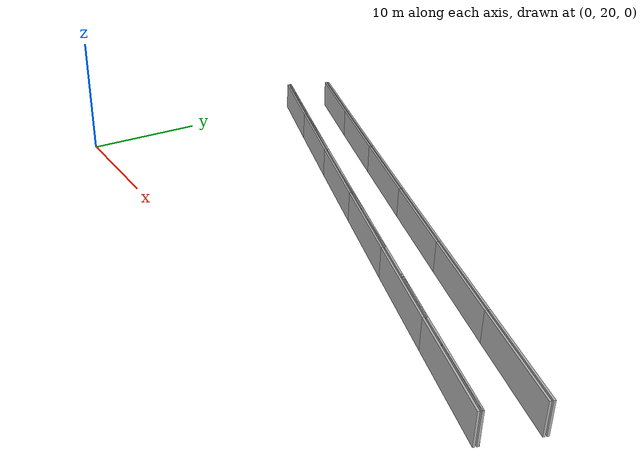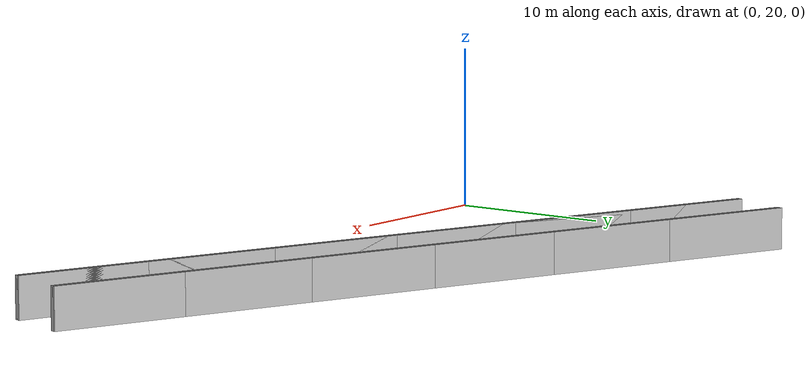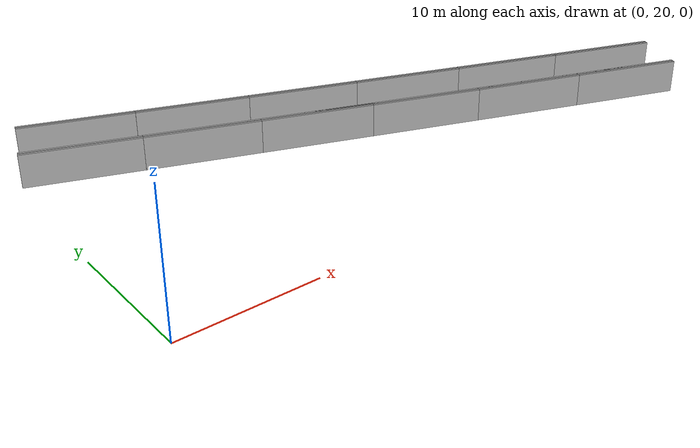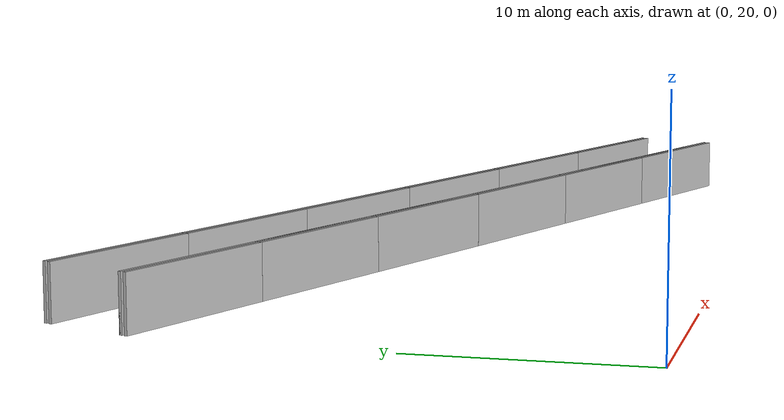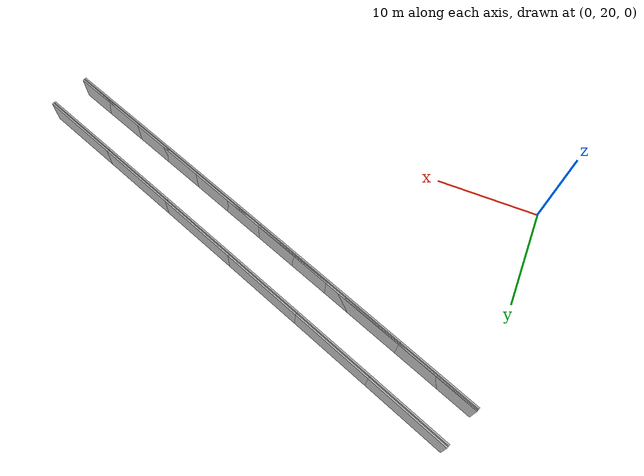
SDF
<?xml version="1.0" ?>
<sdf version="1.6">
  <model name="sps_0808">
    <pose frame="">0 0 0 0 -0 0</pose>
    <static>1</static>
    <self_collide>0</self_collide>
    <allow_auto_disable>0</allow_auto_disable>
    <link name="Wall6676">
      <kinematic>0</kinematic>
      <gravity>1</gravity>
      <self_collide>0</self_collide>
      <collision name="collision">
        <geometry>
          <box>
            <size>8.26107 0.15 2.5</size>
          </box>
        </geometry>
        <pose frame="">0 0 0 0 -0 0</pose>
      </collision>
      <visual name="visual">
        <geometry>
          <box>
            <size>8.26107 0.15 2.5</size>
          </box>
        </geometry>
        <pose frame="">0 0 0 0 -0 0</pose>
        <cast_shadows>1</cast_shadows>
        <transparency>0.0</transparency>
      </visual>
      <pose frame="">43.306 25.392 1.25 0 -0 2.79444</pose>
    </link>
    <link name="Wall6677">
      <kinematic>0</kinematic>
      <gravity>1</gravity>
      <self_collide>0</self_collide>
      <collision name="collision">
        <geometry>
          <box>
            <size>8.26102 0.15 2.5</size>
          </box>
        </geometry>
        <pose frame="">0 0 0 0 -0 0</pose>
      </collision>
      <visual name="visual">
        <geometry>
          <box>
            <size>8.26102 0.15 2.5</size>
          </box>
        </geometry>
        <pose frame="">0 0 0 0 -0 0</pose>
        <cast_shadows>1</cast_shadows>
        <transparency>0.0</transparency>
      </visual>
      <pose frame="">35.541 28.2117 1.25 0 -0 2.79209</pose>
    </link>
    <link name="Wall6678">
      <kinematic>0</kinematic>
      <gravity>1</gravity>
      <self_collide>0</self_collide>
      <collision name="collision">
        <geometry>
          <box>
            <size>8.26114 0.15 2.5</size>
          </box>
        </geometry>
        <pose frame="">0 0 0 0 -0 0</pose>
      </collision>
      <visual name="visual">
        <geometry>
          <box>
            <size>8.26114 0.15 2.5</size>
          </box>
        </geometry>
        <pose frame="">0 0 0 0 -0 0</pose>
        <cast_shadows>1</cast_shadows>
        <transparency>0.0</transparency>
      </visual>
      <pose frame="">27.7827 31.0497 1.25 0 -0 2.78973</pose>
    </link>
    <link name="Wall6679">
      <kinematic>0</kinematic>
      <gravity>1</gravity>
      <self_collide>0</self_collide>
      <collision name="collision">
        <geometry>
          <box>
            <size>8.26087 0.15 2.5</size>
          </box>
        </geometry>
        <pose frame="">0 0 0 0 -0 0</pose>
      </collision>
      <visual name="visual">
        <geometry>
          <box>
            <size>8.26087 0.15 2.5</size>
          </box>
        </geometry>
        <pose frame="">0 0 0 0 -0 0</pose>
        <cast_shadows>1</cast_shadows>
        <transparency>0.0</transparency>
      </visual>
      <pose frame="">20.0312 33.906 1.25 0 -0 2.78736</pose>
    </link>
    <link name="Wall6680">
      <kinematic>0</kinematic>
      <gravity>1</gravity>
      <self_collide>0</self_collide>
      <collision name="collision">
        <geometry>
          <box>
            <size>8.26108 0.15 2.5</size>
          </box>
        </geometry>
        <pose frame="">0 0 0 0 -0 0</pose>
      </collision>
      <visual name="visual">
        <geometry>
          <box>
            <size>8.26108 0.15 2.5</size>
          </box>
        </geometry>
        <pose frame="">0 0 0 0 -0 0</pose>
        <cast_shadows>1</cast_shadows>
        <transparency>0.0</transparency>
      </visual>
      <pose frame="">12.2866 36.7806 1.25 0 -0 2.785</pose>
    </link>
    <link name="Wall6681">
      <kinematic>0</kinematic>
      <gravity>1</gravity>
      <self_collide>0</self_collide>
      <collision name="collision">
        <geometry>
          <box>
            <size>8.26096 0.15 2.5</size>
          </box>
        </geometry>
        <pose frame="">0 0 0 0 -0 0</pose>
      </collision>
      <visual name="visual">
        <geometry>
          <box>
            <size>8.26096 0.15 2.5</size>
          </box>
        </geometry>
        <pose frame="">0 0 0 0 -0 0</pose>
        <cast_shadows>1</cast_shadows>
        <transparency>0.0</transparency>
      </visual>
      <pose frame="">4.54867 39.6736 1.25 0 -0 2.78261</pose>
    </link>
    <link name="Wall6719">
      <kinematic>0</kinematic>
      <gravity>1</gravity>
      <self_collide>0</self_collide>
      <collision name="collision">
        <geometry>
          <box>
            <size>8.25153 0.15 2.5</size>
          </box>
        </geometry>
        <pose frame="">0 0 0 0 -0 0</pose>
      </collision>
      <visual name="visual">
        <geometry>
          <box>
            <size>8.25153 0.15 2.5</size>
          </box>
        </geometry>
        <pose frame="">0 0 0 0 -0 0</pose>
        <cast_shadows>1</cast_shadows>
        <transparency>0.0</transparency>
      </visual>
      <pose frame="">5.88784 43.1865 1.25 0 0 -0.358965</pose>
    </link>
    <link name="Wall6720">
      <kinematic>0</kinematic>
      <gravity>1</gravity>
      <self_collide>0</self_collide>
      <collision name="collision">
        <geometry>
          <box>
            <size>8.25171 0.15 2.5</size>
          </box>
        </geometry>
        <pose frame="">0 0 0 0 -0 0</pose>
      </collision>
      <visual name="visual">
        <geometry>
          <box>
            <size>8.25171 0.15 2.5</size>
          </box>
        </geometry>
        <pose frame="">0 0 0 0 -0 0</pose>
        <cast_shadows>1</cast_shadows>
        <transparency>0.0</transparency>
      </visual>
      <pose frame="">13.6169 40.2968 1.25 0 0 -0.356595</pose>
    </link>
    <link name="Wall6721">
      <kinematic>0</kinematic>
      <gravity>1</gravity>
      <self_collide>0</self_collide>
      <collision name="collision">
        <geometry>
          <box>
            <size>8.25175 0.15 2.5</size>
          </box>
        </geometry>
        <pose frame="">0 0 0 0 -0 0</pose>
      </collision>
      <visual name="visual">
        <geometry>
          <box>
            <size>8.25175 0.15 2.5</size>
          </box>
        </geometry>
        <pose frame="">0 0 0 0 -0 0</pose>
        <cast_shadows>1</cast_shadows>
        <transparency>0.0</transparency>
      </visual>
      <pose frame="">21.353 37.4254 1.25 0 0 -0.354227</pose>
    </link>
    <link name="Wall6722">
      <kinematic>0</kinematic>
      <gravity>1</gravity>
      <self_collide>0</self_collide>
      <collision name="collision">
        <geometry>
          <box>
            <size>8.25151 0.15 2.5</size>
          </box>
        </geometry>
        <pose frame="">0 0 0 0 -0 0</pose>
      </collision>
      <visual name="visual">
        <geometry>
          <box>
            <size>8.25151 0.15 2.5</size>
          </box>
        </geometry>
        <pose frame="">0 0 0 0 -0 0</pose>
        <cast_shadows>1</cast_shadows>
        <transparency>0.0</transparency>
      </visual>
      <pose frame="">29.0957 34.5724 1.25 0 0 -0.351857</pose>
    </link>
    <link name="Wall6723">
      <kinematic>0</kinematic>
      <gravity>1</gravity>
      <self_collide>0</self_collide>
      <collision name="collision">
        <geometry>
          <box>
            <size>8.25166 0.15 2.5</size>
          </box>
        </geometry>
        <pose frame="">0 0 0 0 -0 0</pose>
      </collision>
      <visual name="visual">
        <geometry>
          <box>
            <size>8.25166 0.15 2.5</size>
          </box>
        </geometry>
        <pose frame="">0 0 0 0 -0 0</pose>
        <cast_shadows>1</cast_shadows>
        <transparency>0.0</transparency>
      </visual>
      <pose frame="">36.8451 31.7377 1.25 0 0 -0.349495</pose>
    </link>
    <link name="Wall6724">
      <kinematic>0</kinematic>
      <gravity>1</gravity>
      <self_collide>0</self_collide>
      <collision name="collision">
        <geometry>
          <box>
            <size>8.25158 0.15 2.5</size>
          </box>
        </geometry>
        <pose frame="">0 0 0 0 -0 0</pose>
      </collision>
      <visual name="visual">
        <geometry>
          <box>
            <size>8.25158 0.15 2.5</size>
          </box>
        </geometry>
        <pose frame="">0 0 0 0 -0 0</pose>
        <cast_shadows>1</cast_shadows>
        <transparency>0.0</transparency>
      </visual>
      <pose frame="">44.6012 28.9213 1.25 0 0 -0.34713</pose>
    </link>
    <link name="Wall18371">
      <kinematic>0</kinematic>
      <gravity>1</gravity>
      <self_collide>0</self_collide>
      <collision name="collision">
        <geometry>
          <box>
            <size>8.25153 0.15 2.5</size>
          </box>
        </geometry>
        <pose frame="">0 0 0 0 -0 0</pose>
      </collision>
      <visual name="visual">
        <geometry>
          <box>
            <size>8.25153 0.15 2.5</size>
          </box>
        </geometry>
        <pose frame="">0 0 0 0 -0 0</pose>
        <cast_shadows>1</cast_shadows>
        <transparency>0.0</transparency>
      </visual>
      <pose frame="">5.88784 43.1865 1.25 0 0 -0.358965</pose>
    </link>
    <link name="Wall18372">
      <kinematic>0</kinematic>
      <gravity>1</gravity>
      <self_collide>0</self_collide>
      <collision name="collision">
        <geometry>
          <box>
            <size>8.25171 0.15 2.5</size>
          </box>
        </geometry>
        <pose frame="">0 0 0 0 -0 0</pose>
      </collision>
      <visual name="visual">
        <geometry>
          <box>
            <size>8.25171 0.15 2.5</size>
          </box>
        </geometry>
        <pose frame="">0 0 0 0 -0 0</pose>
        <cast_shadows>1</cast_shadows>
        <transparency>0.0</transparency>
      </visual>
      <pose frame="">13.6169 40.2968 1.25 0 0 -0.356595</pose>
    </link>
    <link name="Wall18373">
      <kinematic>0</kinematic>
      <gravity>1</gravity>
      <self_collide>0</self_collide>
      <collision name="collision">
        <geometry>
          <box>
            <size>8.25175 0.15 2.5</size>
          </box>
        </geometry>
        <pose frame="">0 0 0 0 -0 0</pose>
      </collision>
      <visual name="visual">
        <geometry>
          <box>
            <size>8.25175 0.15 2.5</size>
          </box>
        </geometry>
        <pose frame="">0 0 0 0 -0 0</pose>
        <cast_shadows>1</cast_shadows>
        <transparency>0.0</transparency>
      </visual>
      <pose frame="">21.353 37.4254 1.25 0 0 -0.354227</pose>
    </link>
    <link name="Wall18374">
      <kinematic>0</kinematic>
      <gravity>1</gravity>
      <self_collide>0</self_collide>
      <collision name="collision">
        <geometry>
          <box>
            <size>8.25151 0.15 2.5</size>
          </box>
        </geometry>
        <pose frame="">0 0 0 0 -0 0</pose>
      </collision>
      <visual name="visual">
        <geometry>
          <box>
            <size>8.25151 0.15 2.5</size>
          </box>
        </geometry>
        <pose frame="">0 0 0 0 -0 0</pose>
        <cast_shadows>1</cast_shadows>
        <transparency>0.0</transparency>
      </visual>
      <pose frame="">29.0957 34.5724 1.25 0 0 -0.351857</pose>
    </link>
    <link name="Wall18375">
      <kinematic>0</kinematic>
      <gravity>1</gravity>
      <self_collide>0</self_collide>
      <collision name="collision">
        <geometry>
          <box>
            <size>8.25166 0.15 2.5</size>
          </box>
        </geometry>
        <pose frame="">0 0 0 0 -0 0</pose>
      </collision>
      <visual name="visual">
        <geometry>
          <box>
            <size>8.25166 0.15 2.5</size>
          </box>
        </geometry>
        <pose frame="">0 0 0 0 -0 0</pose>
        <cast_shadows>1</cast_shadows>
        <transparency>0.0</transparency>
      </visual>
      <pose frame="">36.8451 31.7377 1.25 0 0 -0.349495</pose>
    </link>
    <link name="Wall18376">
      <kinematic>0</kinematic>
      <gravity>1</gravity>
      <self_collide>0</self_collide>
      <collision name="collision">
        <geometry>
          <box>
            <size>8.25158 0.15 2.5</size>
          </box>
        </geometry>
        <pose frame="">0 0 0 0 -0 0</pose>
      </collision>
      <visual name="visual">
        <geometry>
          <box>
            <size>8.25158 0.15 2.5</size>
          </box>
        </geometry>
        <pose frame="">0 0 0 0 -0 0</pose>
        <cast_shadows>1</cast_shadows>
        <transparency>0.0</transparency>
      </visual>
      <pose frame="">44.6012 28.9213 1.25 0 0 -0.34713</pose>
    </link>
    <link name="Wall35058">
      <kinematic>0</kinematic>
      <gravity>1</gravity>
      <self_collide>0</self_collide>
      <collision name="collision">
        <geometry>
          <box>
            <size>8.25104 0.15 2.5</size>
          </box>
        </geometry>
        <pose frame="">0 0 0 0 -0 0</pose>
      </collision>
      <visual name="visual">
        <geometry>
          <box>
            <size>8.25104 0.15 2.5</size>
          </box>
        </geometry>
        <pose frame="">0 0 0 0 -0 0</pose>
        <cast_shadows>1</cast_shadows>
        <transparency>0.0</transparency>
      </visual>
      <pose frame="">5.97686 43.42 1.25 0 0 -0.358955</pose>
    </link>
    <link name="Wall35059">
      <kinematic>0</kinematic>
      <gravity>1</gravity>
      <self_collide>0</self_collide>
      <collision name="collision">
        <geometry>
          <box>
            <size>8.25103 0.15 2.5</size>
          </box>
        </geometry>
        <pose frame="">0 0 0 0 -0 0</pose>
      </collision>
      <visual name="visual">
        <geometry>
          <box>
            <size>8.25103 0.15 2.5</size>
          </box>
        </geometry>
        <pose frame="">0 0 0 0 -0 0</pose>
        <cast_shadows>1</cast_shadows>
        <transparency>0.0</transparency>
      </visual>
      <pose frame="">13.7054 40.5306 1.25 0 0 -0.356586</pose>
    </link>
    <link name="Wall35060">
      <kinematic>0</kinematic>
      <gravity>1</gravity>
      <self_collide>0</self_collide>
      <collision name="collision">
        <geometry>
          <box>
            <size>8.25109 0.15 2.5</size>
          </box>
        </geometry>
        <pose frame="">0 0 0 0 -0 0</pose>
      </collision>
      <visual name="visual">
        <geometry>
          <box>
            <size>8.25109 0.15 2.5</size>
          </box>
        </geometry>
        <pose frame="">0 0 0 0 -0 0</pose>
        <cast_shadows>1</cast_shadows>
        <transparency>0.0</transparency>
      </visual>
      <pose frame="">21.4408 37.6595 1.25 0 0 -0.354224</pose>
    </link>
    <link name="Wall35061">
      <kinematic>0</kinematic>
      <gravity>1</gravity>
      <self_collide>0</self_collide>
      <collision name="collision">
        <geometry>
          <box>
            <size>8.25091 0.15 2.5</size>
          </box>
        </geometry>
        <pose frame="">0 0 0 0 -0 0</pose>
      </collision>
      <visual name="visual">
        <geometry>
          <box>
            <size>8.25091 0.15 2.5</size>
          </box>
        </geometry>
        <pose frame="">0 0 0 0 -0 0</pose>
        <cast_shadows>1</cast_shadows>
        <transparency>0.0</transparency>
      </visual>
      <pose frame="">29.183 34.8067 1.25 0 0 -0.351852</pose>
    </link>
    <link name="Wall35062">
      <kinematic>0</kinematic>
      <gravity>1</gravity>
      <self_collide>0</self_collide>
      <collision name="collision">
        <geometry>
          <box>
            <size>8.25096 0.15 2.5</size>
          </box>
        </geometry>
        <pose frame="">0 0 0 0 -0 0</pose>
      </collision>
      <visual name="visual">
        <geometry>
          <box>
            <size>8.25096 0.15 2.5</size>
          </box>
        </geometry>
        <pose frame="">0 0 0 0 -0 0</pose>
        <cast_shadows>1</cast_shadows>
        <transparency>0.0</transparency>
      </visual>
      <pose frame="">36.9318 31.9723 1.25 0 0 -0.349479</pose>
    </link>
    <link name="Wall35063">
      <kinematic>0</kinematic>
      <gravity>1</gravity>
      <self_collide>0</self_collide>
      <collision name="collision">
        <geometry>
          <box>
            <size>8.25095 0.15 2.5</size>
          </box>
        </geometry>
        <pose frame="">0 0 0 0 -0 0</pose>
      </collision>
      <visual name="visual">
        <geometry>
          <box>
            <size>8.25095 0.15 2.5</size>
          </box>
        </geometry>
        <pose frame="">0 0 0 0 -0 0</pose>
        <cast_shadows>1</cast_shadows>
        <transparency>0.0</transparency>
      </visual>
      <pose frame="">44.6873 29.1562 1.25 0 0 -0.347134</pose>
    </link>
    <link name="Wall37893">
      <kinematic>0</kinematic>
      <gravity>1</gravity>
      <self_collide>0</self_collide>
      <collision name="collision">
        <geometry>
          <box>
            <size>8.26151 0.15 2.5</size>
          </box>
        </geometry>
        <pose frame="">0 0 0 0 -0 0</pose>
      </collision>
      <visual name="visual">
        <geometry>
          <box>
            <size>8.26151 0.15 2.5</size>
          </box>
        </geometry>
        <pose frame="">0 0 0 0 -0 0</pose>
        <cast_shadows>1</cast_shadows>
        <transparency>0.0</transparency>
      </visual>
      <pose frame="">4.45956 39.44 1.25 0 0 -0.358945</pose>
    </link>
    <link name="Wall37894">
      <kinematic>0</kinematic>
      <gravity>1</gravity>
      <self_collide>0</self_collide>
      <collision name="collision">
        <geometry>
          <box>
            <size>8.2618 0.15 2.5</size>
          </box>
        </geometry>
        <pose frame="">0 0 0 0 -0 0</pose>
      </collision>
      <visual name="visual">
        <geometry>
          <box>
            <size>8.2618 0.15 2.5</size>
          </box>
        </geometry>
        <pose frame="">0 0 0 0 -0 0</pose>
        <cast_shadows>1</cast_shadows>
        <transparency>0.0</transparency>
      </visual>
      <pose frame="">12.1981 36.5468 1.25 0 0 -0.356613</pose>
    </link>
    <link name="Wall37895">
      <kinematic>0</kinematic>
      <gravity>1</gravity>
      <self_collide>0</self_collide>
      <collision name="collision">
        <geometry>
          <box>
            <size>8.2615 0.15 2.5</size>
          </box>
        </geometry>
        <pose frame="">0 0 0 0 -0 0</pose>
      </collision>
      <visual name="visual">
        <geometry>
          <box>
            <size>8.2615 0.15 2.5</size>
          </box>
        </geometry>
        <pose frame="">0 0 0 0 -0 0</pose>
        <cast_shadows>1</cast_shadows>
        <transparency>0.0</transparency>
      </visual>
      <pose frame="">19.9434 33.6719 1.25 0 0 -0.354223</pose>
    </link>
    <link name="Wall37896">
      <kinematic>0</kinematic>
      <gravity>1</gravity>
      <self_collide>0</self_collide>
      <collision name="collision">
        <geometry>
          <box>
            <size>8.26163 0.15 2.5</size>
          </box>
        </geometry>
        <pose frame="">0 0 0 0 -0 0</pose>
      </collision>
      <visual name="visual">
        <geometry>
          <box>
            <size>8.26163 0.15 2.5</size>
          </box>
        </geometry>
        <pose frame="">0 0 0 0 -0 0</pose>
        <cast_shadows>1</cast_shadows>
        <transparency>0.0</transparency>
      </visual>
      <pose frame="">27.6954 30.8154 1.25 0 0 -0.351871</pose>
    </link>
    <link name="Wall37897">
      <kinematic>0</kinematic>
      <gravity>1</gravity>
      <self_collide>0</self_collide>
      <collision name="collision">
        <geometry>
          <box>
            <size>8.2616 0.15 2.5</size>
          </box>
        </geometry>
        <pose frame="">0 0 0 0 -0 0</pose>
      </collision>
      <visual name="visual">
        <geometry>
          <box>
            <size>8.2616 0.15 2.5</size>
          </box>
        </geometry>
        <pose frame="">0 0 0 0 -0 0</pose>
        <cast_shadows>1</cast_shadows>
        <transparency>0.0</transparency>
      </visual>
      <pose frame="">35.4542 27.9772 1.25 0 0 -0.349497</pose>
    </link>
    <link name="Wall37898">
      <kinematic>0</kinematic>
      <gravity>1</gravity>
      <self_collide>0</self_collide>
      <collision name="collision">
        <geometry>
          <box>
            <size>8.26187 0.15 2.5</size>
          </box>
        </geometry>
        <pose frame="">0 0 0 0 -0 0</pose>
      </collision>
      <visual name="visual">
        <geometry>
          <box>
            <size>8.26187 0.15 2.5</size>
          </box>
        </geometry>
        <pose frame="">0 0 0 0 -0 0</pose>
        <cast_shadows>1</cast_shadows>
        <transparency>0.0</transparency>
      </visual>
      <pose frame="">43.2197 25.1573 1.25 0 0 -0.347143</pose>
    </link>
    <link name="Wall37976">
      <kinematic>0</kinematic>
      <gravity>1</gravity>
      <self_collide>0</self_collide>
      <collision name="collision">
        <geometry>
          <box>
            <size>8.26096 0.15 2.5</size>
          </box>
        </geometry>
        <pose frame="">0 0 0 0 -0 0</pose>
      </collision>
      <visual name="visual">
        <geometry>
          <box>
            <size>8.26096 0.15 2.5</size>
          </box>
        </geometry>
        <pose frame="">0 0 0 0 -0 0</pose>
        <cast_shadows>1</cast_shadows>
        <transparency>0.0</transparency>
      </visual>
      <pose frame="">4.54867 39.6736 1.25 0 0 -0.358978</pose>
    </link>
    <link name="Wall37977">
      <kinematic>0</kinematic>
      <gravity>1</gravity>
      <self_collide>0</self_collide>
      <collision name="collision">
        <geometry>
          <box>
            <size>8.26108 0.15 2.5</size>
          </box>
        </geometry>
        <pose frame="">0 0 0 0 -0 0</pose>
      </collision>
      <visual name="visual">
        <geometry>
          <box>
            <size>8.26108 0.15 2.5</size>
          </box>
        </geometry>
        <pose frame="">0 0 0 0 -0 0</pose>
        <cast_shadows>1</cast_shadows>
        <transparency>0.0</transparency>
      </visual>
      <pose frame="">12.2866 36.7806 1.25 0 0 -0.356591</pose>
    </link>
    <link name="Wall37978">
      <kinematic>0</kinematic>
      <gravity>1</gravity>
      <self_collide>0</self_collide>
      <collision name="collision">
        <geometry>
          <box>
            <size>8.26087 0.15 2.5</size>
          </box>
        </geometry>
        <pose frame="">0 0 0 0 -0 0</pose>
      </collision>
      <visual name="visual">
        <geometry>
          <box>
            <size>8.26087 0.15 2.5</size>
          </box>
        </geometry>
        <pose frame="">0 0 0 0 -0 0</pose>
        <cast_shadows>1</cast_shadows>
        <transparency>0.0</transparency>
      </visual>
      <pose frame="">20.0312 33.906 1.25 0 0 -0.354228</pose>
    </link>
    <link name="Wall37979">
      <kinematic>0</kinematic>
      <gravity>1</gravity>
      <self_collide>0</self_collide>
      <collision name="collision">
        <geometry>
          <box>
            <size>8.26114 0.15 2.5</size>
          </box>
        </geometry>
        <pose frame="">0 0 0 0 -0 0</pose>
      </collision>
      <visual name="visual">
        <geometry>
          <box>
            <size>8.26114 0.15 2.5</size>
          </box>
        </geometry>
        <pose frame="">0 0 0 0 -0 0</pose>
        <cast_shadows>1</cast_shadows>
        <transparency>0.0</transparency>
      </visual>
      <pose frame="">27.7827 31.0497 1.25 0 0 -0.351861</pose>
    </link>
    <link name="Wall37980">
      <kinematic>0</kinematic>
      <gravity>1</gravity>
      <self_collide>0</self_collide>
      <collision name="collision">
        <geometry>
          <box>
            <size>8.26102 0.15 2.5</size>
          </box>
        </geometry>
        <pose frame="">0 0 0 0 -0 0</pose>
      </collision>
      <visual name="visual">
        <geometry>
          <box>
            <size>8.26102 0.15 2.5</size>
          </box>
        </geometry>
        <pose frame="">0 0 0 0 -0 0</pose>
        <cast_shadows>1</cast_shadows>
        <transparency>0.0</transparency>
      </visual>
      <pose frame="">35.541 28.2117 1.25 0 0 -0.349499</pose>
    </link>
    <link name="Wall37981">
      <kinematic>0</kinematic>
      <gravity>1</gravity>
      <self_collide>0</self_collide>
      <collision name="collision">
        <geometry>
          <box>
            <size>8.26107 0.15 2.5</size>
          </box>
        </geometry>
        <pose frame="">0 0 0 0 -0 0</pose>
      </collision>
      <visual name="visual">
        <geometry>
          <box>
            <size>8.26107 0.15 2.5</size>
          </box>
        </geometry>
        <pose frame="">0 0 0 0 -0 0</pose>
        <cast_shadows>1</cast_shadows>
        <transparency>0.0</transparency>
      </visual>
      <pose frame="">43.306 25.392 1.25 0 0 -0.347154</pose>
    </link>
  </model>
</sdf>
